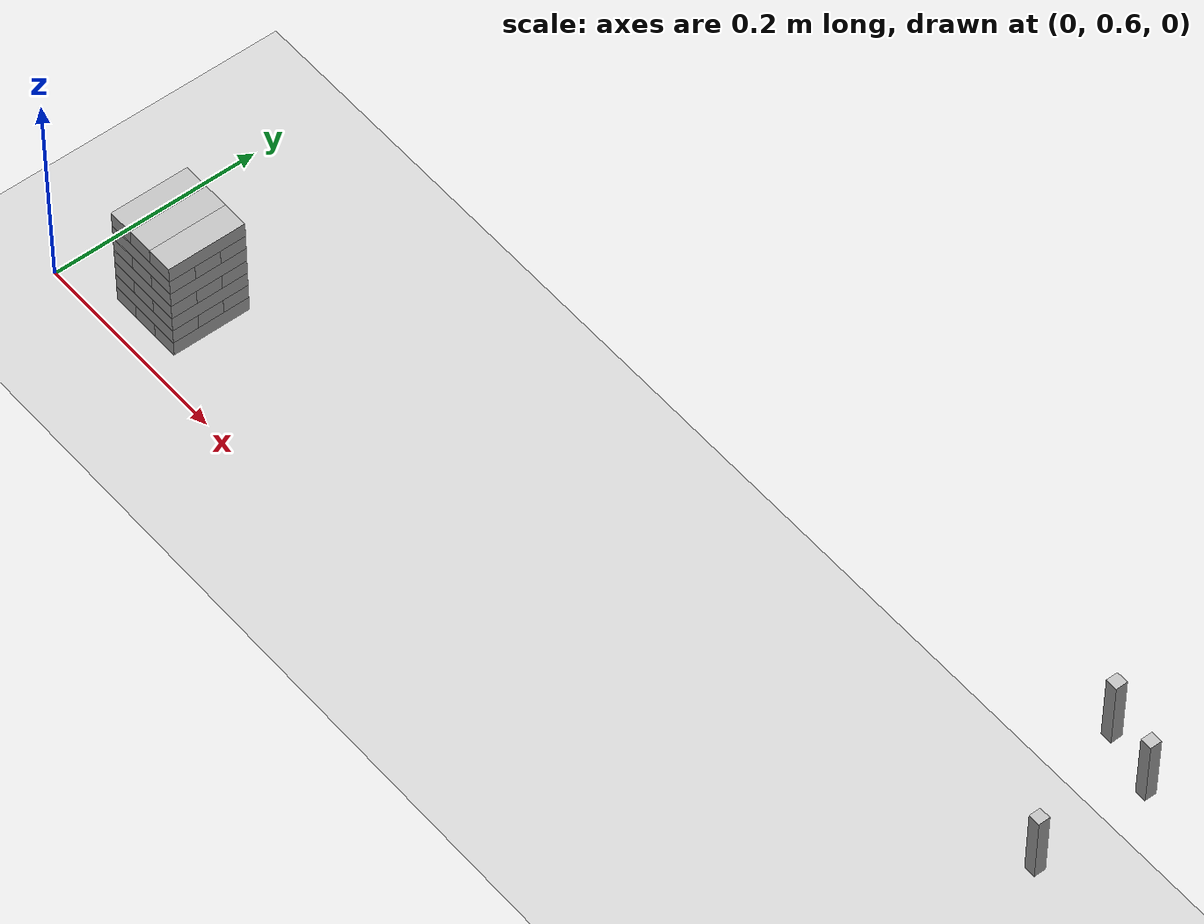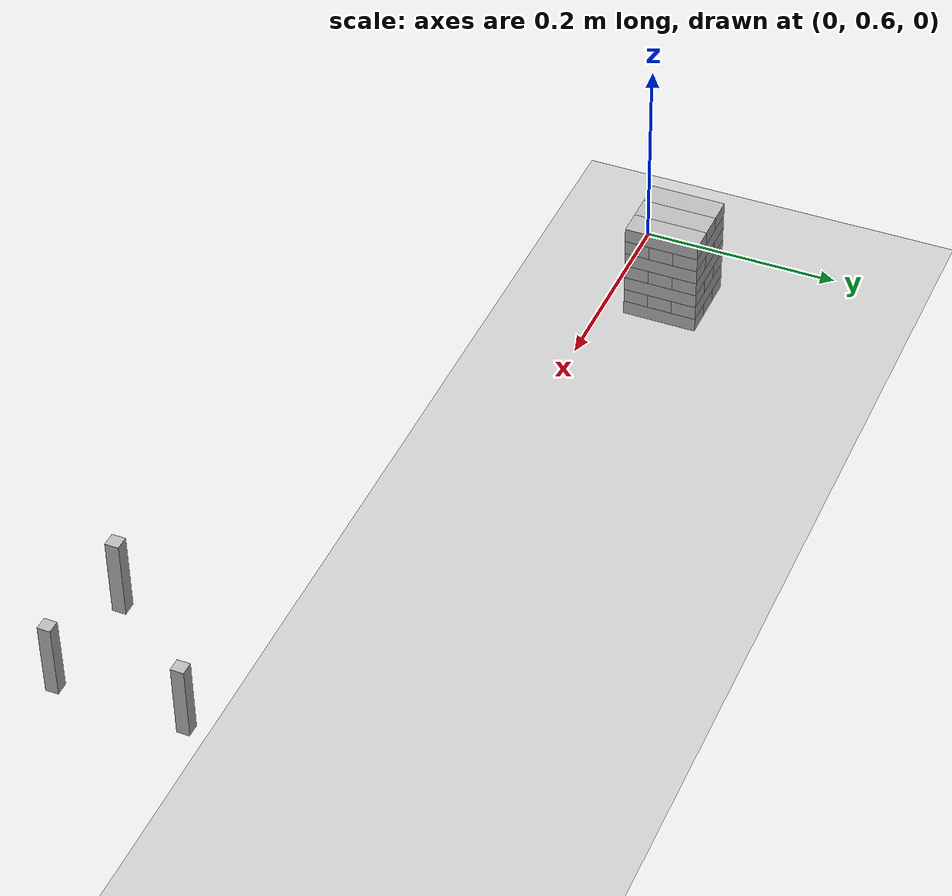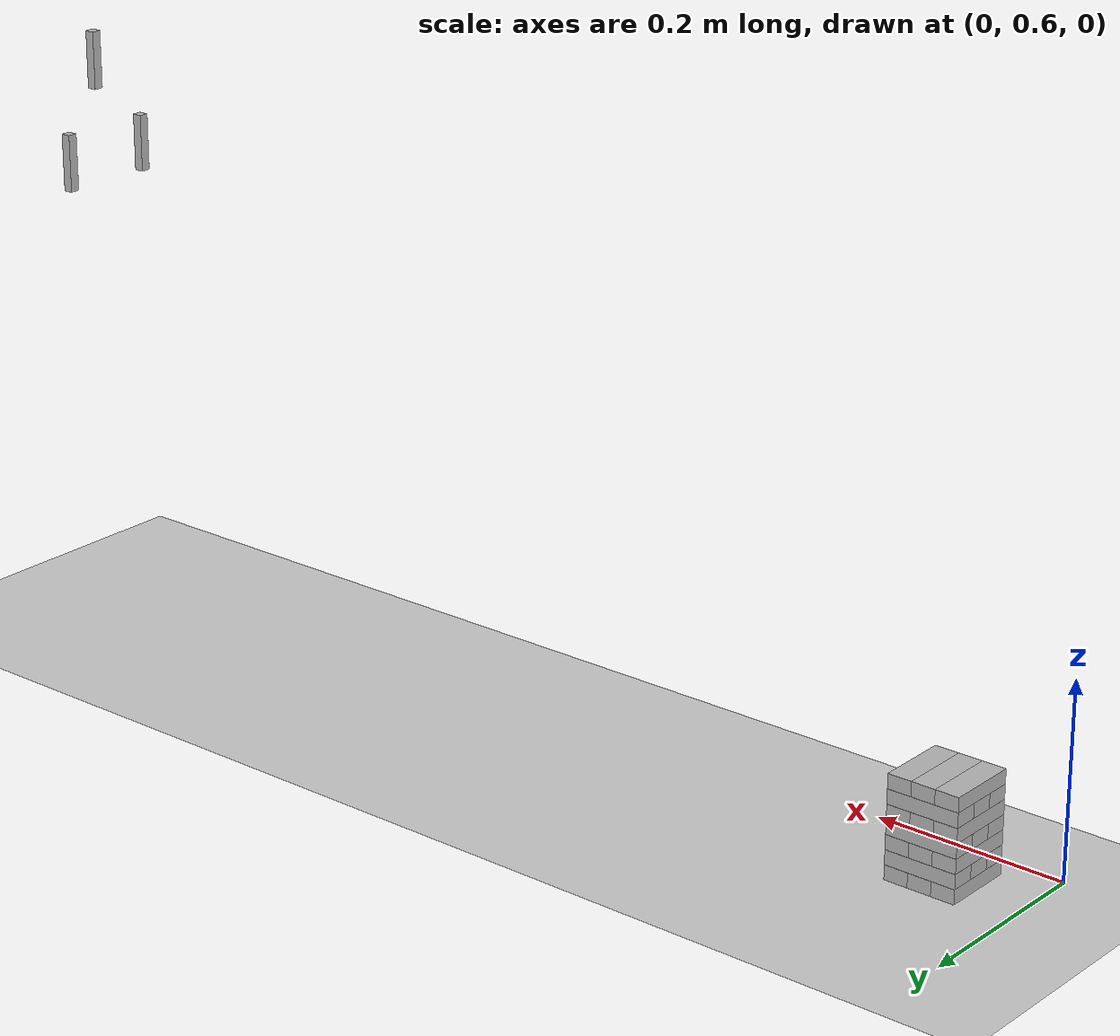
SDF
<?xml version='1.0'?>
<sdf version="1.6">
    <world name="big_bowl_spatula_v">

        <include>
            <uri>model://sun</uri>
        </include>

        <include>
            <uri>model://ground_plane</uri>
        </include>

        <!-- level 0 -->
        <include>
            <uri>model://jenga_block</uri>
            <name>book_target</name>
            <pose>0.115000 0.660000 0.007500 -1.570796 1.570796 0.00</pose>

            <plugin name="target_tf_broadcaster" filename="libtf_broadcaster_plugin.so">
              <linkName>link</linkName>
              <frameName>book_object_frame</frameName>
            </plugin>
        </include>
        <include>
            <uri>model://jenga_block</uri>
            <name>block2</name>
            <pose>0.090000 0.660000 0.007500 -1.570796 1.570796 0.00</pose>
        </include>
        <include>
            <uri>model://jenga_block</uri>
            <name>block3</name>
            <pose>0.065000 0.660000 0.007500 -1.570796 1.570796 0.00</pose>
        </include>
        <!-- level 1 -->
        <include>
            <uri>model://jenga_block</uri>
            <name>block4</name>
            <pose>0.090000 0.685000 0.022550 3.141593 1.570796 0.00</pose>
        </include>
        <include>
            <uri>model://jenga_block</uri>
            <name>block5</name>
            <pose>0.090000 0.660000 0.022550 3.141593 1.570796 0.00</pose>
        </include>
        <include>
            <uri>model://jenga_block</uri>
            <name>block6</name>
            <pose>0.090000 0.635000 0.022550 3.141593 1.570796 0.00</pose>
        </include>
        <!-- level 2 -->
        <include>
            <uri>model://jenga_block</uri>
            <name>block7</name>
            <pose>0.115000 0.660000 0.037600 -1.570796 1.570796 0.00</pose>
        </include>
        <include>
            <uri>model://jenga_block</uri>
            <name>block8</name>
            <pose>0.090000 0.660000 0.037600 -1.570796 1.570796 0.00</pose>
        </include>
        <include>
            <uri>model://jenga_block</uri>
            <name>block9</name>
            <pose>0.065000 0.660000 0.037600 -1.570796 1.570796 0.00</pose>
        </include>
        <!-- level 3 -->
        <include>
            <uri>model://jenga_block</uri>
            <name>block10</name>
            <pose>0.090000 0.685000 0.052650 3.141593 1.570796 0.00</pose>
        </include>
        <include>
            <uri>model://jenga_block</uri>
            <name>block11</name>
            <pose>0.090000 0.660000 0.052650 3.141593 1.570796 0.00</pose>
        </include>
        <include>
            <uri>model://jenga_block</uri>
            <name>block12</name>
            <pose>0.090000 0.635000 0.052650 3.141593 1.570796 0.00</pose>
        </include>
        <!-- level 4 -->
        <include>
            <uri>model://jenga_block</uri>
            <name>block13</name>
            <pose>0.115000 0.660000 0.067700 -1.570796 1.570796 0.00</pose>
        </include>
        <include>
            <uri>model://jenga_block</uri>
            <name>block14</name>
            <pose>0.090000 0.660000 0.067700 -1.570796 1.570796 0.00</pose>
        </include>
        <include>
            <uri>model://jenga_block</uri>
            <name>block15</name>
            <pose>0.065000 0.660000 0.067700 -1.570796 1.570796 0.00</pose>
        </include>
        <!-- level 5 -->
        <include>
            <uri>model://jenga_block</uri>
            <name>block16</name>
            <pose>0.090000 0.685000 0.082750 3.141593 1.570796 0.00</pose>
        </include>
        <include>
            <uri>model://jenga_block</uri>
            <name>block17</name>
            <pose>0.090000 0.660000 0.082750 3.141593 1.570796 0.00</pose>
        </include>
        <include>
            <uri>model://jenga_block</uri>
            <name>block18</name>
            <pose>0.090000 0.635000 0.082750 3.141593 1.570796 0.00</pose>
        </include>
        <!-- level 6 -->
        <include>
            <uri>model://jenga_block</uri>
            <name>block19</name>
            <pose>0.115000 0.660000 0.097800 -1.570796 1.570796 0.00</pose>
        </include>
        <include>
            <uri>model://jenga_block</uri>
            <name>block20</name>
            <pose>0.090000 0.660000 0.097800 -1.570796 1.570796 0.00</pose>
        </include>
        <include>
            <uri>model://jenga_block</uri>
            <name>block21</name>
            <pose>0.065000 0.660000 0.097800 -1.570796 1.570796 0.00</pose>
        </include>

        <!-- Left Gripper -->
        <include>
            <uri>model://finger</uri>
            <name>left_ee</name>
            <pose>1.150000 0.661000 0.575000 0.000000 0.000000 1.57080</pose>

            <plugin name="l_force_controller" filename="libvelocity_controller_plugin.so">
              <linkName>link</linkName>
              <topicName>set_l_ee_twist</topicName>
              <gains>
                <linear>
                  <P>100.0</P>
                  <I>0.0</I>
                  <D>25.0</D>
                </linear>
                <angular>
                  <P>100.0</P>
                  <I>0.0</I>
                  <D>25.0</D>
                </angular>
              </gains>
            </plugin>

            <plugin name="l_tf_broadcaster" filename="libtf_broadcaster_plugin.so">
              <linkName>link</linkName>
              <frameName>l_gripper_tool_frame</frameName>
            </plugin>
        </include>

        <!-- Right Gripper -->
        <include>
            <uri>model://finger</uri>
            <name>right_ee</name>
            <pose>1.150000 0.600000 0.475000 0.000000 0.000000 1.57080</pose>

            <plugin name="r_force_controller" filename="libvelocity_controller_plugin.so">
              <linkName>link</linkName>
              <topicName>set_r_ee_twist</topicName>
              <gains>
                <linear>
                  <P>100.0</P>
                  <I>0.0</I>
                  <D>25.0</D>
                </linear>
                <angular>
                  <P>100.0</P>
                  <I>0.0</I>
                  <D>25.0</D>
                </angular>
              </gains>
            </plugin>

            <plugin name="r_tf_broadcaster" filename="libtf_broadcaster_plugin.so">
              <linkName>link</linkName>
              <frameName>r_gripper_tool_frame</frameName>
            </plugin>
        </include>

        <include>
            <uri>model://finger</uri>
            <name>right_ee_2</name>
            <pose>1.150000 0.7000000 0.475000 0.000000 0.000000 1.57080</pose>

            <plugin name="r_2_force_controller" filename="libvelocity_controller_plugin.so">
              <linkName>link</linkName>
              <topicName>set_r_ee_2_twist</topicName>
              <gains>
                <linear>
                  <P>100.0</P>
                  <I>0.0</I>
                  <D>25.0</D>
                </linear>
                <angular>
                  <P>100.0</P>
                  <I>0.0</I>
                  <D>25.0</D>
                </angular>
              </gains>
            </plugin>

            <plugin name="r_2_tf_broadcaster" filename="libtf_broadcaster_plugin.so">
              <linkName>link</linkName>
              <frameName>r_2_gripper_tool_frame</frameName>
            </plugin>
        </include>

        <plugin name="feature_visualization_plugin" filename="libgiskard_visualization_plugin.so"></plugin>

        <gui>
            <camera name='user_camera'>
                <pose>1.770789 1.775709 1.500612 0 0.375643 -2.675000</pose>
                <view_controller>orbit</view_controller>
            </camera>
        </gui>

    </world>
</sdf>

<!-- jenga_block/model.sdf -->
<sdf version='1.6'>
    <model name='jenga_block'>
        <static>false</static>
        <allow_auto_disable>false</allow_auto_disable>

        <pose>0 0 0 0 0 0</pose>

        <link name='link'>
            <pose>0 0 0 0 0 0</pose>

            <inertial>
                <mass>0.0107</mass>
                <pose>0 0 0 0 0 0</pose>
                <inertia>
                    <ixx>0.000060745</ixx>
                    <iyy>0.000025078</iyy>
                    <izz>0.000020620</izz>
                </inertia>
            </inertial>

            <gravity>true</gravity>

            <collision name='collision'>
              <geometry>
                <box>
                  <size>0.015 0.025 0.075</size>
                </box>
              </geometry>
              <surface>
                <friction>
                  <ode>
                    <mu>1</mu>
                    <mu2>1</mu2>
                  </ode>
                </friction>
              </surface>
            </collision>

            <visual name='visual'>
                <geometry>
                  <box>
                    <size>0.015 0.025 0.075</size>
                  </box>
                </geometry>
            </visual>

        </link>
    </model>
</sdf>

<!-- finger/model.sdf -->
<sdf version='1.6'>
    <model name='gripper'>
        <static>false</static>
        <allow_auto_disable>false</allow_auto_disable>

        <pose>0 0 0 0 0 0</pose>

        <link name='link'>
            <pose>0 0 0 0 0 0</pose>

            <gravity>false</gravity>

            <collision name='collision'>
              <geometry>
                <box>
                  <size>0.01 0.01 0.06</size>
                </box>
              </geometry>
              <surface>
                <friction>
                  <ode>
                    <mu>999</mu>
                    <mu2>999</mu2>
                  </ode>
                </friction>
              </surface>
            </collision>

            <visual name='visual'>
                <geometry>
                  <box>
                    <size>0.01 0.01 0.06</size>
                  </box>
                </geometry>
            </visual>

        </link>
    </model>
</sdf>
